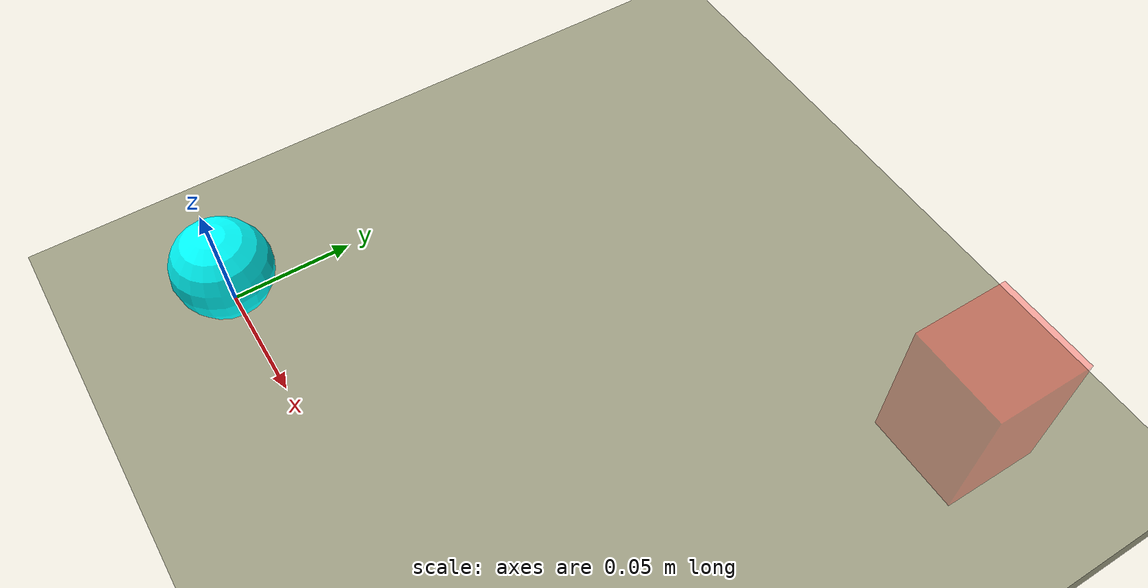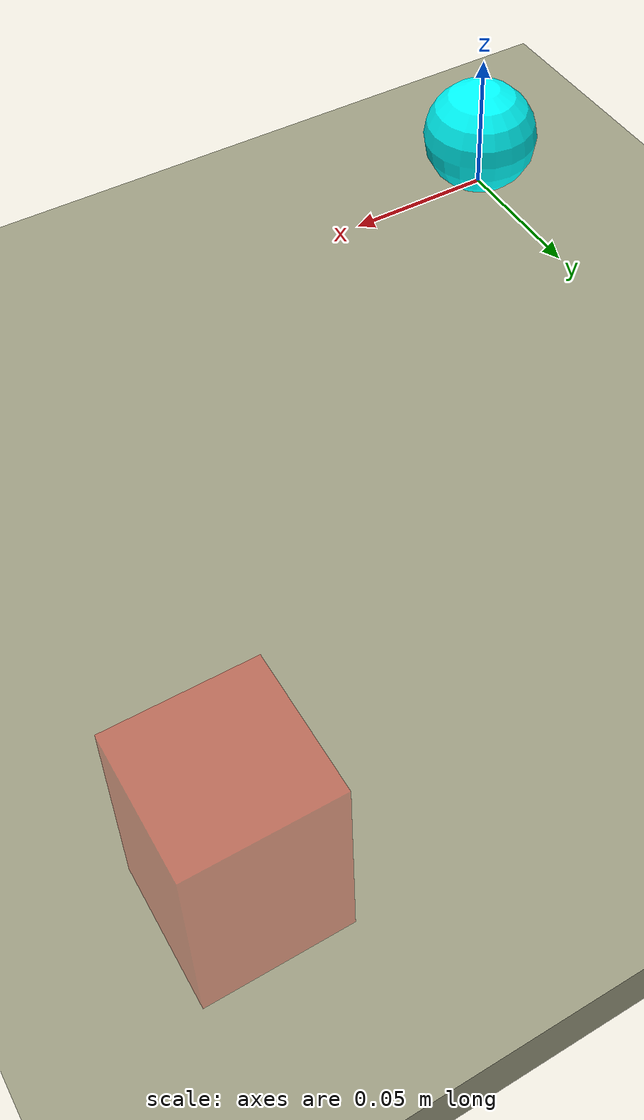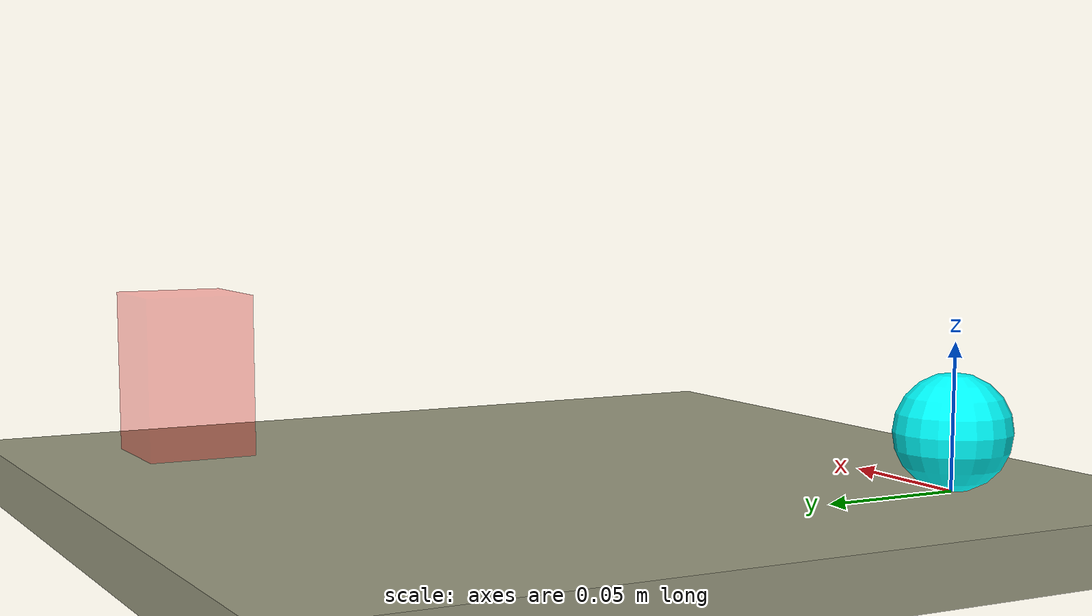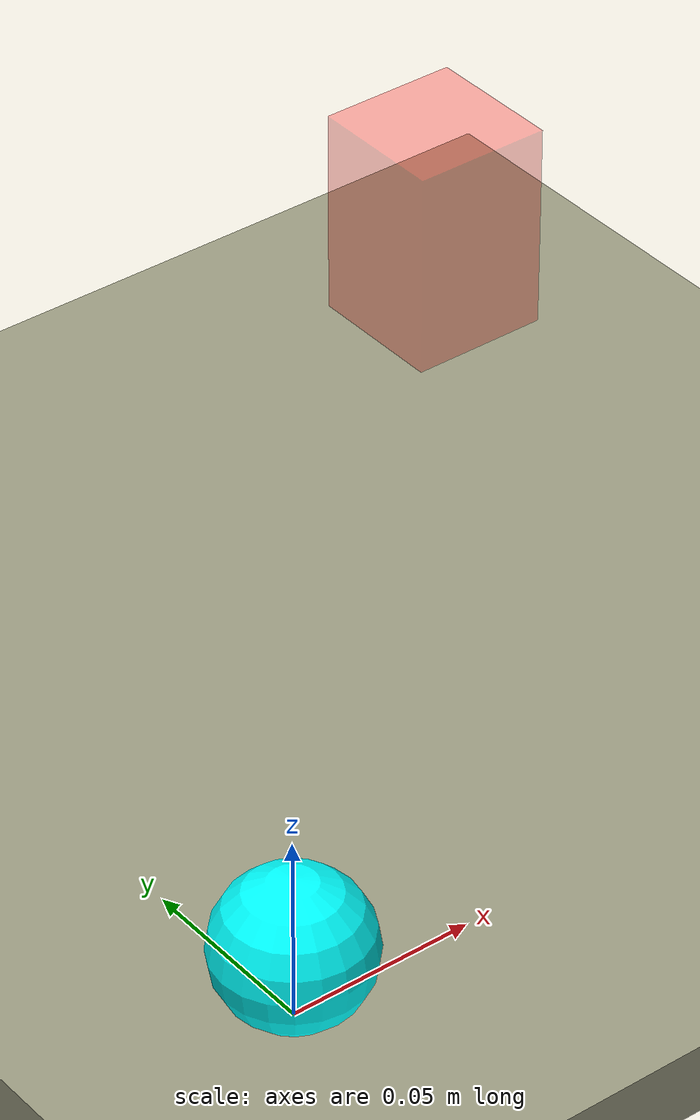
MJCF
<mujoco model="box">
	<compiler inertiafromgeom="true" angle="degree" coordinate="local"/>
  <option timestep='0.01'/>
	<worldbody>

    <geom name="tableTop" type="box" pos="0 0 -0.01" size="0.4 0.4 0.01"
          rgba=".6 .6 .5 1" contype="1" conaffinity="1" />
    <body name="ball" pos="0 0 0">
      <joint name='ballx' type='slide' axis='1 0 0' pos='0 0 0' range='-0.3 0.3' damping='0.1' armature='0' stiffness='0'/>
      <joint name='bally' type='slide' axis='0 1 0' pos='0 0 0' range='-0.3 0.3' damping='0.1' armature='0' stiffness='0'/>
		  <geom type="sphere" size="0.02" pos="0 0 0.02" rgba="0 1 1 1" />
    </body>

    <site name="goal" pos="0.2 0.2 0.03" size="0.02 0.02 0.03" type="box"
              rgba="1 0 0 0.3"/>

	</worldbody>

  <actuator>
    <position ctrllimited="true" ctrlrange="-1 1" joint="ballx" kp="5"  user="1"/>
    <position ctrllimited="true" ctrlrange="-1 1" joint="bally" kp="5"  user="1"/>

  </actuator>

</mujoco>
